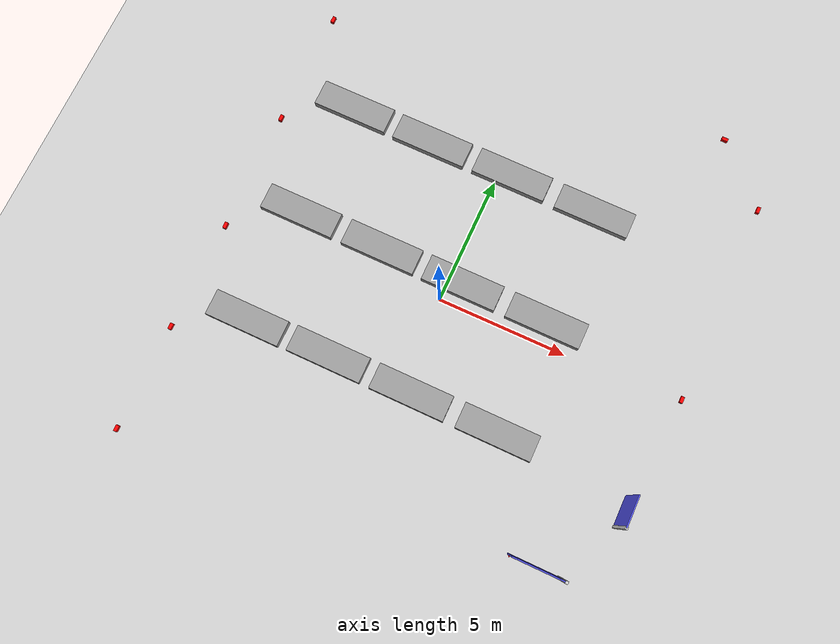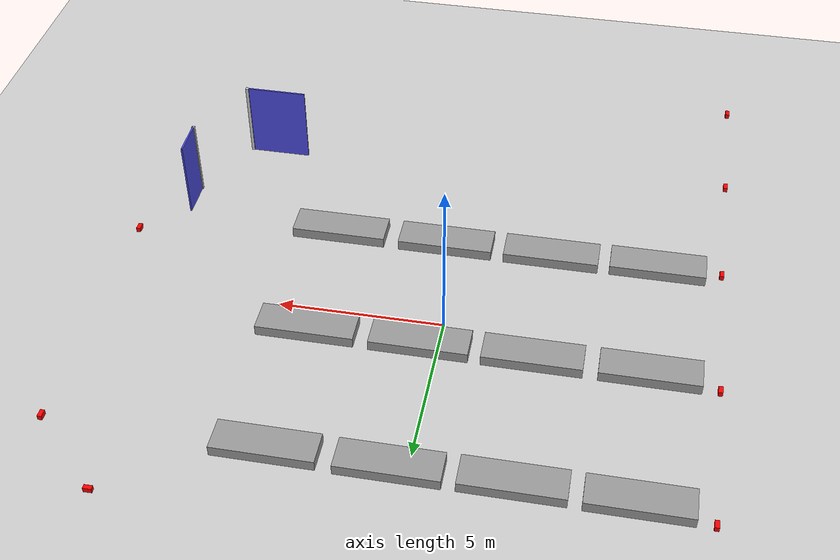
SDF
<sdf version="1.7">
 <world name="default">
  <model name="ground_plane">
   <static>1</static>
   <link name="link">
    <collision name="collision">
     <geometry><plane><normal>0 0 1</normal><size>100 100</size></plane></geometry>
     <surface><friction><ode><mu>100</mu><mu2>50</mu2></ode></friction></surface>
    </collision>
    <visual name="visual">
     <cast_shadows>0</cast_shadows>
     <geometry><plane><normal>0 0 1</normal><size>100 100</size></plane></geometry>
     <material>
      <script><uri>file://media/materials/scripts/gazebo.material</uri><name>Gazebo/Grey</name></script>
     </material>
    </visual>
   </link>
  </model>
  <model name="door_1">
   <link name="door_frame">
    <pose>0.705849 0 1.25 0 -0 0</pose>
    <kinematic>1</kinematic>
    <inertial>
     <inertia><ixx>1</ixx><ixy>0</ixy><ixz>0</ixz><iyy>1</iyy><iyz>0</iyz><izz>1</izz></inertia>
     <mass>1</mass>
    </inertial>
    <visual name="frame_visual">
     <geometry><box><size>0.1 0.1 2.5</size></box></geometry>
     <material>
      <ambient>0.7 0.7 0.7 1</ambient>
      <diffuse>0.8 0.8 0.8 1</diffuse>
      <shader type="pixel"><normal_map>__default__</normal_map></shader>
      <script><name>ModelPreview_2::door_frame::frame_visual_MATERIAL_</name><uri>__default__</uri></script>
      <specular>0 0 0 1</specular>
      <emissive>0 0 0 1</emissive>
     </material>
    </visual>
    <collision name="frame_collision">
     <geometry><box><size>0.1 0.1 2.5</size></box></geometry>
     <surface>
      <friction>
       <ode><mu>1</mu><mu2>1</mu2><fdir1>0 0 0</fdir1><slip1>0</slip1><slip2>0</slip2></ode>
       <torsional>
        <coefficient>1</coefficient>
        <patch_radius>0</patch_radius>
        <surface_radius>0</surface_radius>
        <use_patch_radius>1</use_patch_radius>
        <ode><slip>0</slip></ode>
       </torsional>
      </friction>
      <bounce><restitution_coefficient>0</restitution_coefficient><threshold>1e+06</threshold></bounce>
      <contact>
       <collide_without_contact>0</collide_without_contact>
       <collide_without_contact_bitmask>1</collide_without_contact_bitmask>
       <collide_bitmask>1</collide_bitmask>
       <ode>
        <soft_cfm>0</soft_cfm>
        <soft_erp>0.2</soft_erp>
        <kp>1e+13</kp>
        <kd>1</kd>
        <max_vel>0.01</max_vel>
        <min_depth>0</min_depth>
       </ode>
       <bullet>
        <split_impulse>1</split_impulse>
        <split_impulse_penetration_threshold>-0.01</split_impulse_penetration_threshold>
        <soft_cfm>0</soft_cfm>
        <soft_erp>0.2</soft_erp>
        <kp>1e+13</kp>
        <kd>1</kd>
       </bullet>
      </contact>
     </surface>
    </collision>
   </link>
   <link name="door">
    <kinematic>1</kinematic>
    <pose>-0.288809 0 1.25 0 -0 0</pose>
    <inertial>
     <inertia><ixx>1.96777</ixx><ixy>0</ixy><ixz>0</ixz><iyy>3.08912</iyy><iyz>0</iyz><izz>1.12292</izz></inertia>
     <mass>3.77661</mass>
    </inertial>
    <visual name="door_visual">
     <geometry><box><size>1.88826 0.05 2.5</size></box></geometry>
     <material>
      <ambient>0.2 0.2 0.8 1</ambient>
      <diffuse>0.3 0.3 0.9 1</diffuse>
      <shader type="pixel"/>
      <script><name>ModelPreview_2::door::door_visual_MATERIAL_</name><uri>__default__</uri></script>
     </material>
    </visual>
    <collision name="door_collision">
     <geometry><box><size>1.88826 0.05 2.5</size></box></geometry>
     <surface>
      <friction>
       <ode><mu>1</mu><mu2>1</mu2><fdir1>0 0 0</fdir1><slip1>0</slip1><slip2>0</slip2></ode>
       <torsional>
        <coefficient>1</coefficient>
        <patch_radius>0</patch_radius>
        <surface_radius>0</surface_radius>
        <use_patch_radius>1</use_patch_radius>
        <ode><slip>0</slip></ode>
       </torsional>
      </friction>
      <bounce><restitution_coefficient>0</restitution_coefficient><threshold>1e+06</threshold></bounce>
      <contact>
       <collide_without_contact>0</collide_without_contact>
       <collide_without_contact_bitmask>1</collide_without_contact_bitmask>
       <collide_bitmask>1</collide_bitmask>
       <ode>
        <soft_cfm>0</soft_cfm>
        <soft_erp>0.2</soft_erp>
        <kp>1e+13</kp>
        <kd>1</kd>
        <max_vel>0.01</max_vel>
        <min_depth>0</min_depth>
       </ode>
       <bullet>
        <split_impulse>1</split_impulse>
        <split_impulse_penetration_threshold>-0.01</split_impulse_penetration_threshold>
        <soft_cfm>0</soft_cfm>
        <soft_erp>0.2</soft_erp>
        <kp>1e+13</kp>
        <kd>1</kd>
       </bullet>
      </contact>
     </surface>
    </collision>
   </link>
   <joint name="door_joint" type="prismatic">
    <parent>door_frame</parent>
    <child>door</child>
    <axis>
     <xyz>1 0 0</xyz>
     <limit><lower>0</lower><upper>2</upper><effort>-1</effort><velocity>-1</velocity></limit>
     <dynamics>
      <spring_reference>0</spring_reference>
      <spring_stiffness>0</spring_stiffness>
      <damping>0</damping>
      <friction>0</friction>
     </dynamics>
    </axis>
    <physics>
     <ode><limit><cfm>0</cfm><erp>0.2</erp></limit><suspension><cfm>0</cfm><erp>0.2</erp></suspension></ode>
    </physics>
   </joint>
   <static>0</static>
   <plugin name="door_control_plugin" filename="libdoor_control_plugin.so">
    <door_joint>door_joint</door_joint>
    <speed>1.0</speed>
    <open_target>1.0</open_target>
    <close_target>0.0</close_target>
   </plugin>
   <pose>7.159 -7.25541 0 0 -0 0</pose>
  </model>
  <model name="door_2">
   <link name="door_frame">
    <pose>0.25 -0 1.25 0 -0 0</pose>
    <kinematic>1</kinematic>
    <inertial>
     <inertia><ixx>1</ixx><ixy>0</ixy><ixz>0</ixz><iyy>1</iyy><iyz>0</iyz><izz>1</izz></inertia>
     <mass>1</mass>
    </inertial>
    <visual name="frame_visual">
     <geometry><box><size>0.1 0.1 2.5</size></box></geometry>
     <material>
      <ambient>0.7 0.7 0.7 1</ambient>
      <diffuse>0.8 0.8 0.8 1</diffuse>
      <shader type="pixel"><normal_map>__default__</normal_map></shader>
      <script><name>ModelPreview_2::door_frame::frame_visual_MATERIAL_</name><uri>__default__</uri></script>
      <specular>0 0 0 1</specular>
      <emissive>0 0 0 1</emissive>
     </material>
    </visual>
    <collision name="frame_collision">
     <geometry><box><size>0.1 0.1 2.5</size></box></geometry>
     <surface>
      <friction>
       <ode><mu>1</mu><mu2>1</mu2><fdir1>0 0 0</fdir1><slip1>0</slip1><slip2>0</slip2></ode>
       <torsional>
        <coefficient>1</coefficient>
        <patch_radius>0</patch_radius>
        <surface_radius>0</surface_radius>
        <use_patch_radius>1</use_patch_radius>
        <ode><slip>0</slip></ode>
       </torsional>
      </friction>
      <bounce><restitution_coefficient>0</restitution_coefficient><threshold>1e+06</threshold></bounce>
      <contact>
       <collide_without_contact>0</collide_without_contact>
       <collide_without_contact_bitmask>1</collide_without_contact_bitmask>
       <collide_bitmask>1</collide_bitmask>
       <ode>
        <soft_cfm>0</soft_cfm>
        <soft_erp>0.2</soft_erp>
        <kp>1e+13</kp>
        <kd>1</kd>
        <max_vel>0.01</max_vel>
        <min_depth>0</min_depth>
       </ode>
       <bullet>
        <split_impulse>1</split_impulse>
        <split_impulse_penetration_threshold>-0.01</split_impulse_penetration_threshold>
        <soft_cfm>0</soft_cfm>
        <soft_erp>0.2</soft_erp>
        <kp>1e+13</kp>
        <kd>1</kd>
       </bullet>
      </contact>
     </surface>
    </collision>
   </link>
   <link name="door">
    <kinematic>1</kinematic>
    <pose>-0.335256 -0 1.25 0 -0 0</pose>
    <inertial>
     <inertia><ixx>1.2306</ixx><ixy>0</ixy><ixz>0</ixz><iyy>1.50458</iyy><iyz>0</iyz><izz>0.27496</izz></inertia>
     <mass>2.36181</mass>
    </inertial>
    <visual name="door_visual">
     <geometry><box><size>1.1809 0.05 2.5</size></box></geometry>
     <material>
      <ambient>0.2 0.2 0.8 1</ambient>
      <diffuse>0.3 0.3 0.9 1</diffuse>
      <shader type="pixel"/>
      <script><name>ModelPreview_2::door::door_visual_MATERIAL_</name><uri>__default__</uri></script>
     </material>
    </visual>
    <collision name="door_collision">
     <geometry><box><size>1.1809 0.05 2.5</size></box></geometry>
     <surface>
      <friction>
       <ode><mu>1</mu><mu2>1</mu2><fdir1>0 0 0</fdir1><slip1>0</slip1><slip2>0</slip2></ode>
       <torsional>
        <coefficient>1</coefficient>
        <patch_radius>0</patch_radius>
        <surface_radius>0</surface_radius>
        <use_patch_radius>1</use_patch_radius>
        <ode><slip>0</slip></ode>
       </torsional>
      </friction>
      <bounce><restitution_coefficient>0</restitution_coefficient><threshold>1e+06</threshold></bounce>
      <contact>
       <collide_without_contact>0</collide_without_contact>
       <collide_without_contact_bitmask>1</collide_without_contact_bitmask>
       <collide_bitmask>1</collide_bitmask>
       <ode>
        <soft_cfm>0</soft_cfm>
        <soft_erp>0.2</soft_erp>
        <kp>1e+13</kp>
        <kd>1</kd>
        <max_vel>0.01</max_vel>
        <min_depth>0</min_depth>
       </ode>
       <bullet>
        <split_impulse>1</split_impulse>
        <split_impulse_penetration_threshold>-0.01</split_impulse_penetration_threshold>
        <soft_cfm>0</soft_cfm>
        <soft_erp>0.2</soft_erp>
        <kp>1e+13</kp>
        <kd>1</kd>
       </bullet>
      </contact>
     </surface>
    </collision>
   </link>
   <joint name="door_joint" type="prismatic">
    <parent>door_frame</parent>
    <child>door</child>
    <axis>
     <xyz>1 0 0</xyz>
     <limit><lower>0</lower><upper>2</upper><effort>-1</effort><velocity>-1</velocity></limit>
     <dynamics>
      <spring_reference>0</spring_reference>
      <spring_stiffness>0</spring_stiffness>
      <damping>0</damping>
      <friction>0</friction>
     </dynamics>
    </axis>
    <physics>
     <ode><limit><cfm>0</cfm><erp>0.2</erp></limit><suspension><cfm>0</cfm><erp>0.2</erp></suspension></ode>
    </physics>
   </joint>
   <static>0</static>
   <plugin name="door_control_plugin" filename="libdoor_control_plugin.so">
    <door_joint>door_joint</door_joint>
    <speed>1.0</speed>
    <open_target>1.0</open_target>
    <close_target>0.0</close_target>
   </plugin>
   <pose>8.96591 -4.63073 0 0 0 -1.56674</pose>
  </model>
  <model name="Lidar_2">
   <link name="link_1">
    <inertial>
     <mass>0.00014111</mass>
     <inertia><ixx>7e-08</ixx><ixy>0</ixy><ixz>0</ixz><iyy>7e-08</iyy><iyz>0</iyz><izz>6e-08</izz></inertia>
    </inertial>
    <visual name="visual">
     <geometry><box><size>0.048286 0.048861 0.059852</size></box></geometry>
     <material>
      <lighting>1</lighting>
      <script><uri>file://media/materials/scripts/gazebo.material</uri><name>Gazebo/Grey</name></script>
      <shader type="pixel"><normal_map>__default__</normal_map></shader>
      <ambient>1 0 0 1</ambient>
      <diffuse>0.7 0.7 0.7 1</diffuse>
      <specular>0.01 0.01 0.01 1</specular>
      <emissive>0 0 0 1</emissive>
     </material>
    </visual>
    <collision name="collision">
     <geometry><box><size>0.048286 0.048861 0.059852</size></box></geometry>
     <surface>
      <friction>
       <ode><mu>1</mu><mu2>1</mu2><fdir1>0 0 0</fdir1><slip1>0</slip1><slip2>0</slip2></ode>
       <torsional>
        <coefficient>1</coefficient>
        <patch_radius>0</patch_radius>
        <surface_radius>0</surface_radius>
        <use_patch_radius>1</use_patch_radius>
        <ode><slip>0</slip></ode>
       </torsional>
      </friction>
      <bounce><restitution_coefficient>0</restitution_coefficient><threshold>1e+06</threshold></bounce>
      <contact>
       <collide_without_contact>0</collide_without_contact>
       <collide_without_contact_bitmask>1</collide_without_contact_bitmask>
       <collide_bitmask>1</collide_bitmask>
       <ode>
        <soft_cfm>0</soft_cfm>
        <soft_erp>0.2</soft_erp>
        <kp>1e+13</kp>
        <kd>1</kd>
        <max_vel>0.01</max_vel>
        <min_depth>0</min_depth>
       </ode>
       <bullet>
        <split_impulse>1</split_impulse>
        <split_impulse_penetration_threshold>-0.01</split_impulse_penetration_threshold>
        <soft_cfm>0</soft_cfm>
        <soft_erp>0.2</soft_erp>
        <kp>1e+13</kp>
        <kd>1</kd>
       </bullet>
      </contact>
     </surface>
    </collision>
   </link>
   <static>0</static>
   <pose>9.01836 -4.57225 0.029927 2e-06 2.8e-05 1.56234</pose>
  </model>
  <model name="Lidar_1">
   <link name="link_1">
    <inertial>
     <mass>0.00014111</mass>
     <inertia><ixx>7e-08</ixx><ixy>0</ixy><ixz>0</ixz><iyy>7e-08</iyy><iyz>0</iyz><izz>6e-08</izz></inertia>
    </inertial>
    <visual name="visual">
     <geometry><box><size>0.048286 0.048861 0.059852</size></box></geometry>
     <material>
      <lighting>1</lighting>
      <script><uri>file://media/materials/scripts/gazebo.material</uri><name>Gazebo/Grey</name></script>
      <shader type="pixel"><normal_map>__default__</normal_map></shader>
      <ambient>1 0 0 1</ambient>
      <diffuse>0.7 0.7 0.7 1</diffuse>
      <specular>0.01 0.01 0.01 1</specular>
      <emissive>0 0 0 1</emissive>
     </material>
    </visual>
    <collision name="collision">
     <geometry><box><size>0.048286 0.048861 0.059852</size></box></geometry>
     <surface>
      <friction>
       <ode><mu>1</mu><mu2>1</mu2><fdir1>0 0 0</fdir1><slip1>0</slip1><slip2>0</slip2></ode>
       <torsional>
        <coefficient>1</coefficient>
        <patch_radius>0</patch_radius>
        <surface_radius>0</surface_radius>
        <use_patch_radius>1</use_patch_radius>
        <ode><slip>0</slip></ode>
       </torsional>
      </friction>
      <bounce><restitution_coefficient>0</restitution_coefficient><threshold>1e+06</threshold></bounce>
      <contact>
       <collide_without_contact>0</collide_without_contact>
       <collide_without_contact_bitmask>1</collide_without_contact_bitmask>
       <collide_bitmask>1</collide_bitmask>
       <ode>
        <soft_cfm>0</soft_cfm>
        <soft_erp>0.2</soft_erp>
        <kp>1e+13</kp>
        <kd>1</kd>
        <max_vel>0.01</max_vel>
        <min_depth>0</min_depth>
       </ode>
       <bullet>
        <split_impulse>1</split_impulse>
        <split_impulse_penetration_threshold>-0.01</split_impulse_penetration_threshold>
        <soft_cfm>0</soft_cfm>
        <soft_erp>0.2</soft_erp>
        <kp>1e+13</kp>
        <kd>1</kd>
       </bullet>
      </contact>
     </surface>
    </collision>
   </link>
   <static>0</static>
   <pose>6.02113 -7.31126 0.029922 -1.4e-05 -0.000142 0.173469</pose>
  </model>
  <model name="Camera_1">
   <link name="link_1">
    <inertial>
     <mass>0.00014152</mass>
     <inertia><ixx>8.3e-07</ixx><ixy>0</ixy><ixz>0</ixz><iyy>4e-07</iyy><iyz>0</iyz><izz>7.7e-07</izz></inertia>
    </inertial>
    <gravity>0</gravity>
    <visual name="visual">
     <geometry><box><size>0.119276 0.225925 0.14044</size></box></geometry>
     <material>
      <lighting>1</lighting>
      <script><uri>file://media/materials/scripts/gazebo.material</uri><name>Gazebo/Grey</name></script>
      <shader type="pixel"><normal_map>__default__</normal_map></shader>
      <ambient>1 0 0 1</ambient>
      <diffuse>0.7 0.7 0.7 1</diffuse>
      <specular>0.01 0.01 0.01 1</specular>
      <emissive>0 0 0 1</emissive>
     </material>
    </visual>
    <collision name="collision">
     <geometry><box><size>0.119276 0.225925 0.14044</size></box></geometry>
     <surface>
      <friction>
       <ode><mu>1</mu><mu2>1</mu2><fdir1>0 0 0</fdir1><slip1>0</slip1><slip2>0</slip2></ode>
       <torsional>
        <coefficient>1</coefficient>
        <patch_radius>0</patch_radius>
        <surface_radius>0</surface_radius>
        <use_patch_radius>1</use_patch_radius>
        <ode><slip>0</slip></ode>
       </torsional>
      </friction>
      <bounce><restitution_coefficient>0</restitution_coefficient><threshold>1e+06</threshold></bounce>
      <contact>
       <collide_without_contact>0</collide_without_contact>
       <collide_without_contact_bitmask>1</collide_without_contact_bitmask>
       <collide_bitmask>1</collide_bitmask>
       <ode>
        <soft_cfm>0</soft_cfm>
        <soft_erp>0.2</soft_erp>
        <kp>1e+13</kp>
        <kd>1</kd>
        <max_vel>0.01</max_vel>
        <min_depth>0</min_depth>
       </ode>
       <bullet>
        <split_impulse>1</split_impulse>
        <split_impulse_penetration_threshold>-0.01</split_impulse_penetration_threshold>
        <soft_cfm>0</soft_cfm>
        <soft_erp>0.2</soft_erp>
        <kp>1e+13</kp>
        <kd>1</kd>
       </bullet>
      </contact>
     </surface>
    </collision>
    <sensor name="camera_sensor1" type="camera">
     <update_rate>30</update_rate>
     <camera>
      <horizontal_fov>2.5</horizontal_fov>
      <image><width>800</width><height>600</height><format>R8G8B8</format></image>
      <clip><near>0.1</near><far>100</far></clip>
      <distortion><k1>-0.3</k1><k2>0.1</k2><p1>0</p1><p2>0</p2></distortion>
     </camera>
     <plugin name="camera_plugin" filename="libcamera_plugin.so"/>
    </sensor>
   </link>
   <static>1</static>
   <pose>-7.78926 7.55509 2.25 0 0 -0.001758</pose>
  </model>
  <model name="Camera_2">
   <link name="link_1">
    <inertial>
     <mass>0.00014152</mass>
     <inertia><ixx>8.3e-07</ixx><ixy>0</ixy><ixz>0</ixz><iyy>4e-07</iyy><iyz>0</iyz><izz>7.7e-07</izz></inertia>
    </inertial>
    <gravity>0</gravity>
    <visual name="visual">
     <geometry><box><size>0.119276 0.225925 0.14044</size></box></geometry>
     <material>
      <lighting>1</lighting>
      <script><uri>file://media/materials/scripts/gazebo.material</uri><name>Gazebo/Grey</name></script>
      <shader type="pixel"><normal_map>__default__</normal_map></shader>
      <ambient>1 0 0 1</ambient>
      <diffuse>0.7 0.7 0.7 1</diffuse>
      <specular>0.01 0.01 0.01 1</specular>
      <emissive>0 0 0 1</emissive>
     </material>
    </visual>
    <collision name="collision">
     <geometry><box><size>0.119276 0.225925 0.14044</size></box></geometry>
     <surface>
      <friction>
       <ode><mu>1</mu><mu2>1</mu2><fdir1>0 0 0</fdir1><slip1>0</slip1><slip2>0</slip2></ode>
       <torsional>
        <coefficient>1</coefficient>
        <patch_radius>0</patch_radius>
        <surface_radius>0</surface_radius>
        <use_patch_radius>1</use_patch_radius>
        <ode><slip>0</slip></ode>
       </torsional>
      </friction>
      <bounce><restitution_coefficient>0</restitution_coefficient><threshold>1e+06</threshold></bounce>
      <contact>
       <collide_without_contact>0</collide_without_contact>
       <collide_without_contact_bitmask>1</collide_without_contact_bitmask>
       <collide_bitmask>1</collide_bitmask>
       <ode>
        <soft_cfm>0</soft_cfm>
        <soft_erp>0.2</soft_erp>
        <kp>1e+13</kp>
        <kd>1</kd>
        <max_vel>0.01</max_vel>
        <min_depth>0</min_depth>
       </ode>
       <bullet>
        <split_impulse>1</split_impulse>
        <split_impulse_penetration_threshold>-0.01</split_impulse_penetration_threshold>
        <soft_cfm>0</soft_cfm>
        <soft_erp>0.2</soft_erp>
        <kp>1e+13</kp>
        <kd>1</kd>
       </bullet>
      </contact>
     </surface>
    </collision>
    <sensor name="camera_sensor2" type="camera">
     <update_rate>30</update_rate>
     <camera>
      <horizontal_fov>2.5</horizontal_fov>
      <image><width>800</width><height>600</height><format>R8G8B8</format></image>
      <clip><near>0.1</near><far>100</far></clip>
      <distortion><k1>-0.3</k1><k2>0.1</k2><p1>0</p1><p2>0</p2></distortion>
     </camera>
     <plugin name="camera_plugin" filename="libcamera_plugin.so"/>
    </sensor>
   </link>
   <static>1</static>
   <pose>-7.78976 -5.14654 2.25 0 -0 0</pose>
  </model>
  <model name="Camera_5">
   <link name="link_1">
    <inertial>
     <mass>0.00014152</mass>
     <inertia><ixx>8.3e-07</ixx><ixy>0</ixy><ixz>0</ixz><iyy>4e-07</iyy><iyz>0</iyz><izz>7.7e-07</izz></inertia>
    </inertial>
    <gravity>0</gravity>
    <visual name="visual">
     <geometry><box><size>0.119276 0.225925 0.14044</size></box></geometry>
     <material>
      <lighting>1</lighting>
      <script><uri>file://media/materials/scripts/gazebo.material</uri><name>Gazebo/Grey</name></script>
      <shader type="pixel"><normal_map>__default__</normal_map></shader>
      <ambient>1 0 0 1</ambient>
      <diffuse>0.7 0.7 0.7 1</diffuse>
      <specular>0.01 0.01 0.01 1</specular>
      <emissive>0 0 0 1</emissive>
     </material>
    </visual>
    <collision name="collision">
     <geometry><box><size>0.119276 0.225925 0.14044</size></box></geometry>
     <surface>
      <friction>
       <ode><mu>1</mu><mu2>1</mu2><fdir1>0 0 0</fdir1><slip1>0</slip1><slip2>0</slip2></ode>
       <torsional>
        <coefficient>1</coefficient>
        <patch_radius>0</patch_radius>
        <surface_radius>0</surface_radius>
        <use_patch_radius>1</use_patch_radius>
        <ode><slip>0</slip></ode>
       </torsional>
      </friction>
      <bounce><restitution_coefficient>0</restitution_coefficient><threshold>1e+06</threshold></bounce>
      <contact>
       <collide_without_contact>0</collide_without_contact>
       <collide_without_contact_bitmask>1</collide_without_contact_bitmask>
       <collide_bitmask>1</collide_bitmask>
       <ode>
        <soft_cfm>0</soft_cfm>
        <soft_erp>0.2</soft_erp>
        <kp>1e+13</kp>
        <kd>1</kd>
        <max_vel>0.01</max_vel>
        <min_depth>0</min_depth>
       </ode>
       <bullet>
        <split_impulse>1</split_impulse>
        <split_impulse_penetration_threshold>-0.01</split_impulse_penetration_threshold>
        <soft_cfm>0</soft_cfm>
        <soft_erp>0.2</soft_erp>
        <kp>1e+13</kp>
        <kd>1</kd>
       </bullet>
      </contact>
     </surface>
    </collision>
    <sensor name="camera_sensor5" type="camera">
     <update_rate>30</update_rate>
     <camera>
      <horizontal_fov>2.5</horizontal_fov>
      <image><width>800</width><height>600</height><format>R8G8B8</format></image>
      <clip><near>0.1</near><far>100</far></clip>
      <distortion><k1>-0.3</k1><k2>0.1</k2><p1>0</p1><p2>0</p2></distortion>
     </camera>
     <plugin name="camera_plugin" filename="libcamera_plugin.so"/>
    </sensor>
   </link>
   <static>1</static>
   <pose>-7.79561 -8.97716 2.25 0 -0 0</pose>
  </model>
  <model name="Camera_3">
   <link name="link_1">
    <inertial>
     <mass>0.00014152</mass>
     <inertia><ixx>8.3e-07</ixx><ixy>0</ixy><ixz>0</ixz><iyy>4e-07</iyy><iyz>0</iyz><izz>7.7e-07</izz></inertia>
    </inertial>
    <gravity>0</gravity>
    <visual name="visual">
     <geometry><box><size>0.119276 0.225925 0.14044</size></box></geometry>
     <material>
      <lighting>1</lighting>
      <script><uri>file://media/materials/scripts/gazebo.material</uri><name>Gazebo/Grey</name></script>
      <shader type="pixel"><normal_map>__default__</normal_map></shader>
      <ambient>1 0 0 1</ambient>
      <diffuse>0.7 0.7 0.7 1</diffuse>
      <specular>0.01 0.01 0.01 1</specular>
      <emissive>0 0 0 1</emissive>
     </material>
    </visual>
    <collision name="collision">
     <geometry><box><size>0.119276 0.225925 0.14044</size></box></geometry>
     <surface>
      <friction>
       <ode><mu>1</mu><mu2>1</mu2><fdir1>0 0 0</fdir1><slip1>0</slip1><slip2>0</slip2></ode>
       <torsional>
        <coefficient>1</coefficient>
        <patch_radius>0</patch_radius>
        <surface_radius>0</surface_radius>
        <use_patch_radius>1</use_patch_radius>
        <ode><slip>0</slip></ode>
       </torsional>
      </friction>
      <bounce><restitution_coefficient>0</restitution_coefficient><threshold>1e+06</threshold></bounce>
      <contact>
       <collide_without_contact>0</collide_without_contact>
       <collide_without_contact_bitmask>1</collide_without_contact_bitmask>
       <collide_bitmask>1</collide_bitmask>
       <ode>
        <soft_cfm>0</soft_cfm>
        <soft_erp>0.2</soft_erp>
        <kp>1e+13</kp>
        <kd>1</kd>
        <max_vel>0.01</max_vel>
        <min_depth>0</min_depth>
       </ode>
       <bullet>
        <split_impulse>1</split_impulse>
        <split_impulse_penetration_threshold>-0.01</split_impulse_penetration_threshold>
        <soft_cfm>0</soft_cfm>
        <soft_erp>0.2</soft_erp>
        <kp>1e+13</kp>
        <kd>1</kd>
       </bullet>
      </contact>
     </surface>
    </collision>
    <sensor name="camera_sensor3" type="camera">
     <update_rate>30</update_rate>
     <camera>
      <horizontal_fov>2.5</horizontal_fov>
      <image><width>800</width><height>600</height><format>R8G8B8</format></image>
      <clip><near>0.1</near><far>100</far></clip>
      <distortion><k1>-0.3</k1><k2>0.1</k2><p1>0</p1><p2>0</p2></distortion>
     </camera>
     <plugin name="camera_plugin" filename="libcamera_plugin.so"/>
    </sensor>
   </link>
   <static>1</static>
   <pose>9.1133 -0.190201 2.2383 0.006874 -0.032728 0.004643</pose>
  </model>
  <model name="Camera_4">
   <link name="link_1">
    <inertial>
     <mass>0.00014152</mass>
     <inertia><ixx>8.3e-07</ixx><ixy>0</ixy><ixz>0</ixz><iyy>4e-07</iyy><iyz>0</iyz><izz>7.7e-07</izz></inertia>
    </inertial>
    <gravity>0</gravity>
    <visual name="visual">
     <geometry><box><size>0.119276 0.225925 0.14044</size></box></geometry>
     <material>
      <lighting>1</lighting>
      <script><uri>file://media/materials/scripts/gazebo.material</uri><name>Gazebo/Grey</name></script>
      <shader type="pixel"><normal_map>__default__</normal_map></shader>
      <ambient>1 0 0 1</ambient>
      <diffuse>0.7 0.7 0.7 1</diffuse>
      <specular>0.01 0.01 0.01 1</specular>
      <emissive>0 0 0 1</emissive>
     </material>
    </visual>
    <collision name="collision">
     <geometry><box><size>0.119276 0.225925 0.14044</size></box></geometry>
     <surface>
      <friction>
       <ode><mu>1</mu><mu2>1</mu2><fdir1>0 0 0</fdir1><slip1>0</slip1><slip2>0</slip2></ode>
       <torsional>
        <coefficient>1</coefficient>
        <patch_radius>0</patch_radius>
        <surface_radius>0</surface_radius>
        <use_patch_radius>1</use_patch_radius>
        <ode><slip>0</slip></ode>
       </torsional>
      </friction>
      <bounce><restitution_coefficient>0</restitution_coefficient><threshold>1e+06</threshold></bounce>
      <contact>
       <collide_without_contact>0</collide_without_contact>
       <collide_without_contact_bitmask>1</collide_without_contact_bitmask>
       <collide_bitmask>1</collide_bitmask>
       <ode>
        <soft_cfm>0</soft_cfm>
        <soft_erp>0.2</soft_erp>
        <kp>1e+13</kp>
        <kd>1</kd>
        <max_vel>0.01</max_vel>
        <min_depth>0</min_depth>
       </ode>
       <bullet>
        <split_impulse>1</split_impulse>
        <split_impulse_penetration_threshold>-0.01</split_impulse_penetration_threshold>
        <soft_cfm>0</soft_cfm>
        <soft_erp>0.2</soft_erp>
        <kp>1e+13</kp>
        <kd>1</kd>
       </bullet>
      </contact>
     </surface>
    </collision>
    <sensor name="camera_sensor4" type="camera">
     <update_rate>30</update_rate>
     <camera>
      <horizontal_fov>2.5</horizontal_fov>
      <image><width>800</width><height>600</height><format>R8G8B8</format></image>
      <clip><near>0.1</near><far>100</far></clip>
      <distortion><k1>-0.3</k1><k2>0.1</k2><p1>0</p1><p2>0</p2></distortion>
     </camera>
     <plugin name="camera_plugin" filename="libcamera_plugin.so"/>
    </sensor>
   </link>
   <static>1</static>
   <pose>9.11064 7.1731 2.25 0 -0 0</pose>
  </model>
  <model name="Camera_8">
   <link name="link_1">
    <inertial>
     <mass>0.00014152</mass>
     <inertia><ixx>8.3e-07</ixx><ixy>0</ixy><ixz>0</ixz><iyy>4e-07</iyy><iyz>0</iyz><izz>7.7e-07</izz></inertia>
    </inertial>
    <gravity>0</gravity>
    <visual name="visual">
     <geometry><box><size>0.119276 0.225925 0.14044</size></box></geometry>
     <material>
      <lighting>1</lighting>
      <script><uri>file://media/materials/scripts/gazebo.material</uri><name>Gazebo/Grey</name></script>
      <shader type="pixel"><normal_map>__default__</normal_map></shader>
      <ambient>1 0 0 1</ambient>
      <diffuse>0.7 0.7 0.7 1</diffuse>
      <specular>0.01 0.01 0.01 1</specular>
      <emissive>0 0 0 1</emissive>
     </material>
    </visual>
    <collision name="collision">
     <geometry><box><size>0.119276 0.225925 0.14044</size></box></geometry>
     <surface>
      <friction>
       <ode><mu>1</mu><mu2>1</mu2><fdir1>0 0 0</fdir1><slip1>0</slip1><slip2>0</slip2></ode>
       <torsional>
        <coefficient>1</coefficient>
        <patch_radius>0</patch_radius>
        <surface_radius>0</surface_radius>
        <use_patch_radius>1</use_patch_radius>
        <ode><slip>0</slip></ode>
       </torsional>
      </friction>
      <bounce><restitution_coefficient>0</restitution_coefficient><threshold>1e+06</threshold></bounce>
      <contact>
       <collide_without_contact>0</collide_without_contact>
       <collide_without_contact_bitmask>1</collide_without_contact_bitmask>
       <collide_bitmask>1</collide_bitmask>
       <ode>
        <soft_cfm>0</soft_cfm>
        <soft_erp>0.2</soft_erp>
        <kp>1e+13</kp>
        <kd>1</kd>
        <max_vel>0.01</max_vel>
        <min_depth>0</min_depth>
       </ode>
       <bullet>
        <split_impulse>1</split_impulse>
        <split_impulse_penetration_threshold>-0.01</split_impulse_penetration_threshold>
        <soft_cfm>0</soft_cfm>
        <soft_erp>0.2</soft_erp>
        <kp>1e+13</kp>
        <kd>1</kd>
       </bullet>
      </contact>
     </surface>
    </collision>
    <sensor name="camera_sensor8" type="camera">
     <update_rate>30</update_rate>
     <camera>
      <horizontal_fov>2.5</horizontal_fov>
      <image><width>800</width><height>600</height><format>R8G8B8</format></image>
      <clip><near>0.1</near><far>100</far></clip>
      <distortion><k1>-0.3</k1><k2>0.1</k2><p1>0</p1><p2>0</p2></distortion>
     </camera>
     <plugin name="camera_plugin" filename="libcamera_plugin.so"/>
    </sensor>
   </link>
   <static>1</static>
   <pose>-7.79581 3.27627 2.25 0 -0 0</pose>
  </model>
  <model name="Camera_9">
   <link name="link_1">
    <inertial>
     <mass>0.00014152</mass>
     <inertia><ixx>8.3e-07</ixx><ixy>0</ixy><ixz>0</ixz><iyy>4e-07</iyy><iyz>0</iyz><izz>7.7e-07</izz></inertia>
    </inertial>
    <gravity>0</gravity>
    <visual name="visual">
     <geometry><box><size>0.119276 0.225925 0.14044</size></box></geometry>
     <material>
      <lighting>1</lighting>
      <script><uri>file://media/materials/scripts/gazebo.material</uri><name>Gazebo/Grey</name></script>
      <shader type="pixel"><normal_map>__default__</normal_map></shader>
      <ambient>1 0 0 1</ambient>
      <diffuse>0.7 0.7 0.7 1</diffuse>
      <specular>0.01 0.01 0.01 1</specular>
      <emissive>0 0 0 1</emissive>
     </material>
    </visual>
    <collision name="collision">
     <geometry><box><size>0.119276 0.225925 0.14044</size></box></geometry>
     <surface>
      <friction>
       <ode><mu>1</mu><mu2>1</mu2><fdir1>0 0 0</fdir1><slip1>0</slip1><slip2>0</slip2></ode>
       <torsional>
        <coefficient>1</coefficient>
        <patch_radius>0</patch_radius>
        <surface_radius>0</surface_radius>
        <use_patch_radius>1</use_patch_radius>
        <ode><slip>0</slip></ode>
       </torsional>
      </friction>
      <bounce><restitution_coefficient>0</restitution_coefficient><threshold>1e+06</threshold></bounce>
      <contact>
       <collide_without_contact>0</collide_without_contact>
       <collide_without_contact_bitmask>1</collide_without_contact_bitmask>
       <collide_bitmask>1</collide_bitmask>
       <ode>
        <soft_cfm>0</soft_cfm>
        <soft_erp>0.2</soft_erp>
        <kp>1e+13</kp>
        <kd>1</kd>
        <max_vel>0.01</max_vel>
        <min_depth>0</min_depth>
       </ode>
       <bullet>
        <split_impulse>1</split_impulse>
        <split_impulse_penetration_threshold>-0.01</split_impulse_penetration_threshold>
        <soft_cfm>0</soft_cfm>
        <soft_erp>0.2</soft_erp>
        <kp>1e+13</kp>
        <kd>1</kd>
       </bullet>
      </contact>
     </surface>
    </collision>
    <sensor name="camera_sensor9" type="camera">
     <update_rate>30</update_rate>
     <camera>
      <horizontal_fov>2.5</horizontal_fov>
      <image><width>800</width><height>600</height><format>R8G8B8</format></image>
      <clip><near>0.1</near><far>100</far></clip>
      <distortion><k1>-0.3</k1><k2>0.1</k2><p1>0</p1><p2>0</p2></distortion>
     </camera>
     <plugin name="camera_plugin" filename="libcamera_plugin.so"/>
    </sensor>
   </link>
   <static>1</static>
   <pose>-7.75189 -1.15366 2.25 0 -0 0</pose>
  </model>
  <model name="Camera_10">
   <link name="link_1">
    <inertial>
     <mass>0.00014152</mass>
     <inertia><ixx>8.3e-07</ixx><ixy>0</ixy><ixz>0</ixz><iyy>4e-07</iyy><iyz>0</iyz><izz>7.7e-07</izz></inertia>
    </inertial>
    <gravity>0</gravity>
    <visual name="visual">
     <geometry><box><size>0.119276 0.225925 0.14044</size></box></geometry>
     <material>
      <lighting>1</lighting>
      <script><uri>file://media/materials/scripts/gazebo.material</uri><name>Gazebo/Grey</name></script>
      <shader type="pixel"><normal_map>__default__</normal_map></shader>
      <ambient>1 0 0 1</ambient>
      <diffuse>0.7 0.7 0.7 1</diffuse>
      <specular>0.01 0.01 0.01 1</specular>
      <emissive>0 0 0 1</emissive>
     </material>
    </visual>
    <collision name="collision">
     <geometry><box><size>0.119276 0.225925 0.14044</size></box></geometry>
     <surface>
      <friction>
       <ode><mu>1</mu><mu2>1</mu2><fdir1>0 0 0</fdir1><slip1>0</slip1><slip2>0</slip2></ode>
       <torsional>
        <coefficient>1</coefficient>
        <patch_radius>0</patch_radius>
        <surface_radius>0</surface_radius>
        <use_patch_radius>1</use_patch_radius>
        <ode><slip>0</slip></ode>
       </torsional>
      </friction>
      <bounce><restitution_coefficient>0</restitution_coefficient><threshold>1e+06</threshold></bounce>
      <contact>
       <collide_without_contact>0</collide_without_contact>
       <collide_without_contact_bitmask>1</collide_without_contact_bitmask>
       <collide_bitmask>1</collide_bitmask>
       <ode>
        <soft_cfm>0</soft_cfm>
        <soft_erp>0.2</soft_erp>
        <kp>1e+13</kp>
        <kd>1</kd>
        <max_vel>0.01</max_vel>
        <min_depth>0</min_depth>
       </ode>
       <bullet>
        <split_impulse>1</split_impulse>
        <split_impulse_penetration_threshold>-0.01</split_impulse_penetration_threshold>
        <soft_cfm>0</soft_cfm>
        <soft_erp>0.2</soft_erp>
        <kp>1e+13</kp>
        <kd>1</kd>
       </bullet>
      </contact>
     </surface>
    </collision>
    <sensor name="camera_sensor10" type="camera">
     <update_rate>30</update_rate>
     <camera>
      <horizontal_fov>2.5</horizontal_fov>
      <image><width>800</width><height>600</height><format>R8G8B8</format></image>
      <clip><near>0.1</near><far>100</far></clip>
      <distortion><k1>-0.3</k1><k2>0.1</k2><p1>0</p1><p2>0</p2></distortion>
     </camera>
     <plugin name="camera_plugin" filename="libcamera_plugin.so"/>
    </sensor>
   </link>
   <static>1</static>
   <pose>7.08865 9.17685 2.25 0 0 -1.56463</pose>
  </model>
  <model name="unit_box">
   <pose>3.90999 0.857686 0.165569 1.3e-05 -0 -1e-06</pose>
   <link name="link">
    <inertial>
     <mass>1</mass>
     <inertia>
      <ixx>0.166667</ixx>
      <ixy>0</ixy>
      <ixz>0</ixz>
      <iyy>0.166667</iyy>
      <iyz>0</iyz>
      <izz>0.166667</izz>
     </inertia>
    </inertial>
    <collision name="collision"><geometry><box><size>2.93054 1 0.33115</size></box></geometry></collision>
    <visual name="visual">
     <geometry><box><size>2.93054 1 0.33115</size></box></geometry>
     <material>
      <script><name>Gazebo/Grey</name><uri>file://media/materials/scripts/gazebo.material</uri></script>
     </material>
    </visual>
   </link>
  </model>
  <model name="unit_box_clone">
   <pose>0.535015 0.869286 0.165571 -1e-05 -0 7e-06</pose>
   <link name="link">
    <inertial>
     <mass>1</mass>
     <inertia>
      <ixx>0.166667</ixx>
      <ixy>0</ixy>
      <ixz>0</ixz>
      <iyy>0.166667</iyy>
      <iyz>0</iyz>
      <izz>0.166667</izz>
     </inertia>
    </inertial>
    <collision name="collision"><geometry><box><size>2.93054 1 0.331151</size></box></geometry></collision>
    <visual name="visual">
     <geometry><box><size>2.93054 1 0.331151</size></box></geometry>
     <material>
      <script><name>Gazebo/Grey</name><uri>file://media/materials/scripts/gazebo.material</uri></script>
     </material>
    </visual>
   </link>
  </model>
  <model name="unit_box_clone_clone">
   <pose>-2.7616 0.87544 0.165571 -1e-05 -0 7e-06</pose>
   <link name="link">
    <inertial>
     <mass>1</mass>
     <inertia>
      <ixx>0.166667</ixx>
      <ixy>0</ixy>
      <ixz>0</ixz>
      <iyy>0.166667</iyy>
      <iyz>0</iyz>
      <izz>0.166667</izz>
     </inertia>
    </inertial>
    <collision name="collision"><geometry><box><size>2.93054 1 0.331151</size></box></geometry></collision>
    <visual name="visual">
     <geometry><box><size>2.93054 1 0.331151</size></box></geometry>
     <material>
      <script><name>Gazebo/Grey</name><uri>file://media/materials/scripts/gazebo.material</uri></script>
     </material>
    </visual>
   </link>
  </model>
  <model name="unit_box_clone_clone_clone">
   <pose>-6.12156 0.882366 0.165571 1e-05 -0 -4e-06</pose>
   <link name="link">
    <inertial>
     <mass>1</mass>
     <inertia>
      <ixx>0.166667</ixx>
      <ixy>0</ixy>
      <ixz>0</ixz>
      <iyy>0.166667</iyy>
      <iyz>0</iyz>
      <izz>0.166667</izz>
     </inertia>
    </inertial>
    <collision name="collision"><geometry><box><size>2.93054 1 0.331151</size></box></geometry></collision>
    <visual name="visual">
     <geometry><box><size>2.93054 1 0.331151</size></box></geometry>
     <material>
      <script><name>Gazebo/Grey</name><uri>file://media/materials/scripts/gazebo.material</uri></script>
     </material>
    </visual>
   </link>
  </model>
  <model name="unit_box_clone_clone_clone_0">
   <pose>-6.11346 5.48792 0.165571 1e-05 -0 -3e-06</pose>
   <link name="link">
    <inertial>
     <mass>1</mass>
     <inertia>
      <ixx>0.166667</ixx>
      <ixy>0</ixy>
      <ixz>0</ixz>
      <iyy>0.166667</iyy>
      <iyz>0</iyz>
      <izz>0.166667</izz>
     </inertia>
    </inertial>
    <collision name="collision"><geometry><box><size>2.93054 1 0.331151</size></box></geometry></collision>
    <visual name="visual">
     <geometry><box><size>2.93054 1 0.331151</size></box></geometry>
     <material>
      <script><name>Gazebo/Grey</name><uri>file://media/materials/scripts/gazebo.material</uri></script>
     </material>
    </visual>
   </link>
  </model>
  <model name="unit_box_clone_clone_clone_1">
   <pose>-2.80618 5.46578 0.165571 1e-05 -0 -2e-06</pose>
   <link name="link">
    <inertial>
     <mass>1</mass>
     <inertia>
      <ixx>0.166667</ixx>
      <ixy>0</ixy>
      <ixz>0</ixz>
      <iyy>0.166667</iyy>
      <iyz>0</iyz>
      <izz>0.166667</izz>
     </inertia>
    </inertial>
    <collision name="collision"><geometry><box><size>2.93054 1 0.331151</size></box></geometry></collision>
    <visual name="visual">
     <geometry><box><size>2.93054 1 0.331151</size></box></geometry>
     <material>
      <script><name>Gazebo/Grey</name><uri>file://media/materials/scripts/gazebo.material</uri></script>
     </material>
    </visual>
   </link>
  </model>
  <model name="unit_box_clone_clone_clone_2">
   <pose>0.50651 5.48035 0.165571 1e-05 -0 -2e-06</pose>
   <link name="link">
    <inertial>
     <mass>1</mass>
     <inertia>
      <ixx>0.166667</ixx>
      <ixy>0</ixy>
      <ixz>0</ixz>
      <iyy>0.166667</iyy>
      <iyz>0</iyz>
      <izz>0.166667</izz>
     </inertia>
    </inertial>
    <collision name="collision"><geometry><box><size>2.93054 1 0.331151</size></box></geometry></collision>
    <visual name="visual">
     <geometry><box><size>2.93054 1 0.331151</size></box></geometry>
     <material>
      <script><name>Gazebo/Grey</name><uri>file://media/materials/scripts/gazebo.material</uri></script>
     </material>
    </visual>
   </link>
  </model>
  <model name="unit_box_clone_clone_clone_3">
   <pose>3.90231 5.45085 0.165571 1e-05 -0 -1e-06</pose>
   <link name="link">
    <inertial>
     <mass>1</mass>
     <inertia>
      <ixx>0.166667</ixx>
      <ixy>0</ixy>
      <ixz>0</ixz>
      <iyy>0.166667</iyy>
      <iyz>0</iyz>
      <izz>0.166667</izz>
     </inertia>
    </inertial>
    <collision name="collision"><geometry><box><size>2.93054 1 0.331151</size></box></geometry></collision>
    <visual name="visual">
     <geometry><box><size>2.93054 1 0.331151</size></box></geometry>
     <material>
      <script><name>Gazebo/Grey</name><uri>file://media/materials/scripts/gazebo.material</uri></script>
     </material>
    </visual>
   </link>
  </model>
  <model name="unit_box_clone_clone_clone_4">
   <pose>-6.08895 -3.60073 0.165571 -1e-05 -0 8e-06</pose>
   <link name="link">
    <inertial>
     <mass>1</mass>
     <inertia>
      <ixx>0.166667</ixx>
      <ixy>0</ixy>
      <ixz>0</ixz>
      <iyy>0.166667</iyy>
      <iyz>0</iyz>
      <izz>0.166667</izz>
     </inertia>
    </inertial>
    <collision name="collision"><geometry><box><size>2.93054 1 0.331151</size></box></geometry></collision>
    <visual name="visual">
     <geometry><box><size>2.93054 1 0.331151</size></box></geometry>
     <material>
      <script><name>Gazebo/Grey</name><uri>file://media/materials/scripts/gazebo.material</uri></script>
     </material>
    </visual>
   </link>
  </model>
  <model name="unit_box_clone_clone_clone_5">
   <pose>-2.8014 -3.57204 0.165571 1e-05 -0 7e-06</pose>
   <link name="link">
    <inertial>
     <mass>1</mass>
     <inertia>
      <ixx>0.166667</ixx>
      <ixy>0</ixy>
      <ixz>0</ixz>
      <iyy>0.166667</iyy>
      <iyz>0</iyz>
      <izz>0.166667</izz>
     </inertia>
    </inertial>
    <collision name="collision"><geometry><box><size>2.93054 1 0.331151</size></box></geometry></collision>
    <visual name="visual">
     <geometry><box><size>2.93054 1 0.331151</size></box></geometry>
     <material>
      <script><name>Gazebo/Grey</name><uri>file://media/materials/scripts/gazebo.material</uri></script>
     </material>
    </visual>
   </link>
  </model>
  <model name="unit_box_clone_clone_clone_6">
   <pose>0.517849 -3.57357 0.165571 1e-05 -0 7e-06</pose>
   <link name="link">
    <inertial>
     <mass>1</mass>
     <inertia>
      <ixx>0.166667</ixx>
      <ixy>0</ixy>
      <ixz>0</ixz>
      <iyy>0.166667</iyy>
      <iyz>0</iyz>
      <izz>0.166667</izz>
     </inertia>
    </inertial>
    <collision name="collision"><geometry><box><size>2.93054 1 0.331151</size></box></geometry></collision>
    <visual name="visual">
     <geometry><box><size>2.93054 1 0.331151</size></box></geometry>
     <material>
      <script><name>Gazebo/Grey</name><uri>file://media/materials/scripts/gazebo.material</uri></script>
     </material>
    </visual>
   </link>
  </model>
  <model name="unit_box_clone_clone_clone_7">
   <pose>3.9139 -3.57667 0.165571 1e-05 -0 8e-06</pose>
   <link name="link">
    <inertial>
     <mass>1</mass>
     <inertia>
      <ixx>0.166667</ixx>
      <ixy>0</ixy>
      <ixz>0</ixz>
      <iyy>0.166667</iyy>
      <iyz>0</iyz>
      <izz>0.166667</izz>
     </inertia>
    </inertial>
    <collision name="collision"><geometry><box><size>2.93054 1 0.331151</size></box></geometry></collision>
    <visual name="visual">
     <geometry><box><size>2.93054 1 0.331151</size></box></geometry>
     <material>
      <script><name>Gazebo/Grey</name><uri>file://media/materials/scripts/gazebo.material</uri></script>
     </material>
    </visual>
   </link>
  </model>
 </world>
</sdf>
